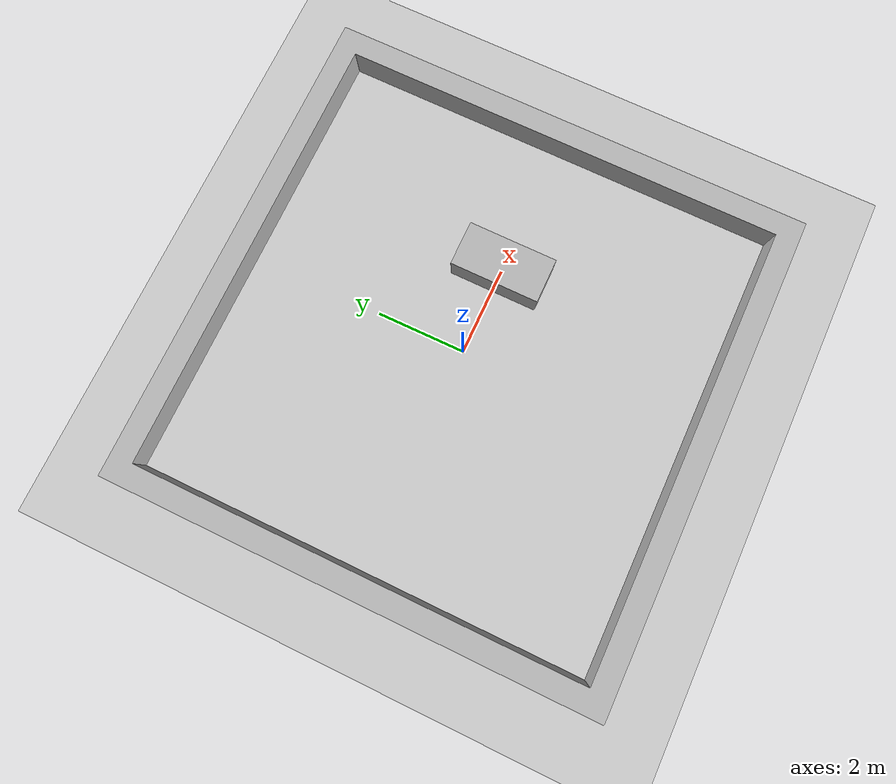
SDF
<?xml version="1.0" ?>
<sdf version="1.5">
  <world name="default">
    <!-- A global light source -->
    <include>
      <uri>model://sun</uri>
    </include>
    <!-- A ground plane -->
    <include>
      <uri>model://ground_plane</uri>
    </include>
    <!-- Custom mesh model -->
    <model name="my_mesh">
      <pose>0 0 -0.1 0 0 1.570796327</pose>
      <static>true</static>
      <link name="body">
          <!-- Visual element to display the mesh -->
          <visual name="visual">
              <geometry>
                  <mesh><uri>file:///home/ruan/dev_ws/src/my_bot/worlds/custom_worlds/Test_square_simple_simple.stl</uri>
                    <scale>0.001 0.001 0.001</scale>
                  </mesh>
              </geometry>
          </visual>
          <!-- Collision element for lidar detection -->
          <collision name="collision">
              <geometry>
                  <mesh><uri>file:///home/ruan/dev_ws/src/my_bot/worlds/custom_worlds/Test_square_simple_simple.stl</uri>
                    <scale>0.001 0.001 0.001</scale>
                  </mesh>
              </geometry>
          </collision>
      </link>
    </model>

    <!-- Add the model state publisher plugin -->
    <plugin name="model_state_publisher" filename="libgazebo_ros_state.so">
      <ros>
        <namespace>/</namespace>
      </ros>
    </plugin>

  </world>
</sdf>
